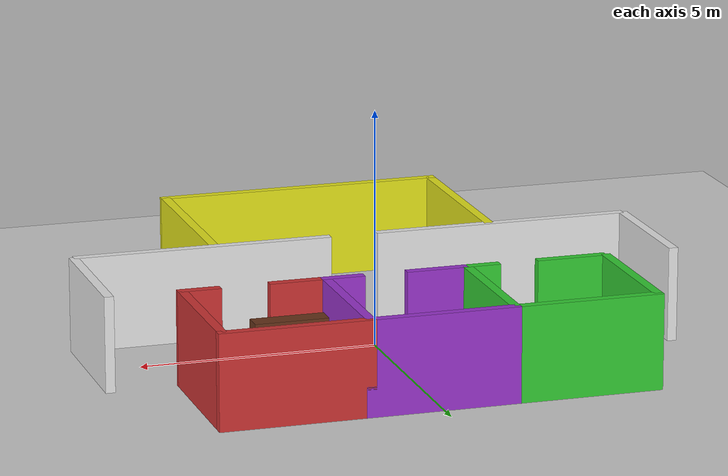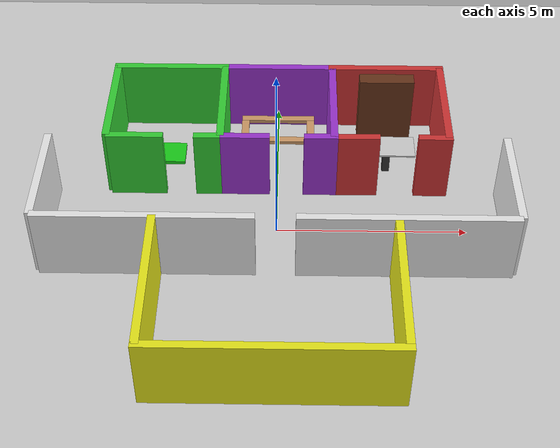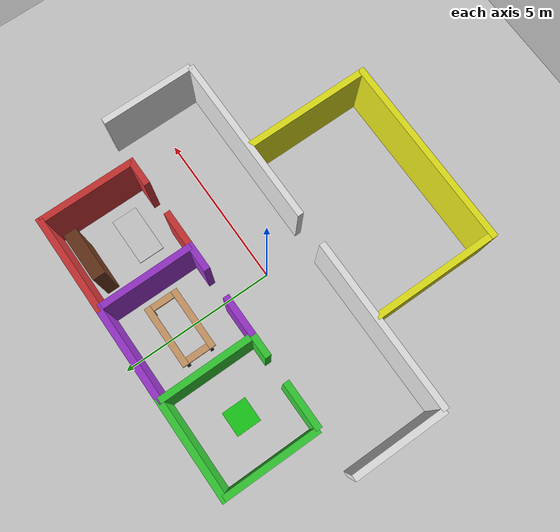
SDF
<sdf version="1.9">
 <world name="hospital_world_colored">
  <physics name="1ms" type="ignored">
   <max_step_size>0.001</max_step_size>
   <real_time_factor>1</real_time_factor>
   <real_time_update_rate>1000</real_time_update_rate>
  </physics>
  <plugin name="gz::sim::systems::Physics" filename="ignition-gazebo-physics-system"/>
  <plugin name="gz::sim::systems::UserCommands" filename="ignition-gazebo-user-commands-system"/>
  <plugin name="gz::sim::systems::SceneBroadcaster" filename="ignition-gazebo-scene-broadcaster-system"/>
  <plugin name="gz::sim::systems::Contact" filename="ignition-gazebo-contact-system"/>
  <gravity>0 0 -9.8</gravity>
  <magnetic_field>6e-06 2.3e-05 -4.2e-05</magnetic_field>
  <atmosphere type="adiabatic"/>
  <scene><ambient>0.4 0.4 0.4 1</ambient><background>0.7 0.7 0.7 1</background><shadows>true</shadows></scene>
  <light name="sun" type="directional">
   <pose>0 0 10 0 0 0</pose>
   <intensity>1</intensity>
   <direction>-0.5 0.1 -0.9</direction>
   <diffuse>0.8 0.8 0.8 1</diffuse>
   <specular>0.2 0.2 0.2 1</specular>
   <attenuation>
    <range>1000</range>
    <linear>0.01</linear>
    <constant>0.9</constant>
    <quadratic>0.001</quadratic>
   </attenuation>
  </light>
  <model name="ground_plane">
   <static>true</static>
   <link name="link">
    <collision name="collision">
     <geometry><plane><normal>0 0 1</normal><size>100 100</size></plane></geometry>
    </collision>
    <visual name="visual">
     <geometry><plane><normal>0 0 1</normal><size>100 100</size></plane></geometry>
     <material>
      <ambient>0.8 0.8 0.8 1</ambient>
      <diffuse>0.8 0.8 0.8 1</diffuse>
      <specular>0.8 0.8 0.8 1</specular>
     </material>
    </visual>
   </link>
  </model>
  <model name="building_structure">
   <static>true</static>
   <link name="walls">
    <visual name="corridor_wall_left">
     <pose>-6 0 1 0 0 1.5708</pose>
     <geometry><box><size>3 0.2 2</size></box></geometry>
     <material><ambient>0.9 0.9 0.9 1</ambient><diffuse>0.9 0.9 0.9 1</diffuse></material>
    </visual>
    <collision name="c_corridor_wall_left">
     <pose>-6 0 1 0 0 1.5708</pose>
     <geometry><box><size>3 0.2 2</size></box></geometry>
    </collision>
    <visual name="corridor_wall_right">
     <pose>6 0 1 0 0 1.5708</pose>
     <geometry><box><size>3 0.2 2</size></box></geometry>
     <material><ambient>0.9 0.9 0.9 1</ambient><diffuse>0.9 0.9 0.9 1</diffuse></material>
    </visual>
    <collision name="c_corridor_wall_right">
     <pose>6 0 1 0 0 1.5708</pose>
     <geometry><box><size>3 0.2 2</size></box></geometry>
    </collision>
    <visual name="corridor_wall_bottom_l">
     <pose>-3.25 -1.5 1 0 0 0</pose>
     <geometry><box><size>5.5 0.2 2</size></box></geometry>
     <material><ambient>0.9 0.9 0.9 1</ambient><diffuse>0.9 0.9 0.9 1</diffuse></material>
    </visual>
    <collision name="c_corridor_wall_bottom_l">
     <pose>-3.25 -1.5 1 0 0 0</pose>
     <geometry><box><size>5.5 0.2 2</size></box></geometry>
    </collision>
    <visual name="corridor_wall_bottom_r">
     <pose>3.25 -1.5 1 0 0 0</pose>
     <geometry><box><size>5.5 0.2 2</size></box></geometry>
     <material><ambient>0.9 0.9 0.9 1</ambient><diffuse>0.9 0.9 0.9 1</diffuse></material>
    </visual>
    <collision name="c_corridor_wall_bottom_r">
     <pose>3.25 -1.5 1 0 0 0</pose>
     <geometry><box><size>5.5 0.2 2</size></box></geometry>
    </collision>
    <visual name="r1_w1">
     <pose>-4.5 3 1 0 0 1.5708</pose>
     <geometry><box><size>3 0.2 2</size></box></geometry>
     <material><ambient>0.2 0.8 0.2 1</ambient><diffuse>0.2 0.8 0.2 1</diffuse></material>
    </visual>
    <visual name="r1_w2">
     <pose>-1.5 3 1 0 0 1.5708</pose>
     <geometry><box><size>3 0.2 2</size></box></geometry>
     <material><ambient>0.2 0.8 0.2 1</ambient><diffuse>0.2 0.8 0.2 1</diffuse></material>
    </visual>
    <visual name="r1_w3">
     <pose>-3 4.5 1 0 0 0</pose>
     <geometry><box><size>3.2 0.2 2</size></box></geometry>
     <material><ambient>0.2 0.8 0.2 1</ambient><diffuse>0.2 0.8 0.2 1</diffuse></material>
    </visual>
    <visual name="r1_w4_part1">
     <pose>-3.75 1.5 1 0 0 0</pose>
     <geometry><box><size>1.5 0.2 2</size></box></geometry>
     <material><ambient>0.2 0.8 0.2 1</ambient><diffuse>0.2 0.8 0.2 1</diffuse></material>
    </visual>
    <visual name="r1_w4_part2">
     <pose>-1.85 1.5 1 0 0 0</pose>
     <geometry><box><size>0.7 0.2 2</size></box></geometry>
     <material><ambient>0.2 0.8 0.2 1</ambient><diffuse>0.2 0.8 0.2 1</diffuse></material>
    </visual>
    <collision name="c_r1_w1">
     <pose>-4.5 3 1 0 0 1.5708</pose>
     <geometry><box><size>3 0.2 2</size></box></geometry>
    </collision>
    <collision name="c_r1_w2">
     <pose>-1.5 3 1 0 0 1.5708</pose>
     <geometry><box><size>3 0.2 2</size></box></geometry>
    </collision>
    <collision name="c_r1_w3">
     <pose>-3 4.5 1 0 0 0</pose>
     <geometry><box><size>3.2 0.2 2</size></box></geometry>
    </collision>
    <collision name="c_r1_w4_1">
     <pose>-3.75 1.5 1 0 0 0</pose>
     <geometry><box><size>1.5 0.2 2</size></box></geometry>
    </collision>
    <collision name="c_r1_w4_2">
     <pose>-1.85 1.5 1 0 0 0</pose>
     <geometry><box><size>0.7 0.2 2</size></box></geometry>
    </collision>
    <visual name="r2_w2">
     <pose>1.5 3 1 0 0 1.5708</pose>
     <geometry><box><size>3 0.2 2</size></box></geometry>
     <material><ambient>0.6 0.2 0.8 1</ambient><diffuse>0.6 0.2 0.8 1</diffuse></material>
    </visual>
    <visual name="r2_w3">
     <pose>0 4.5 1 0 0 0</pose>
     <geometry><box><size>3.2 0.2 2</size></box></geometry>
     <material><ambient>0.6 0.2 0.8 1</ambient><diffuse>0.6 0.2 0.8 1</diffuse></material>
    </visual>
    <visual name="r2_w4_part1">
     <pose>-0.85 1.5 1 0 0 0</pose>
     <geometry><box><size>1.3 0.2 2</size></box></geometry>
     <material><ambient>0.6 0.2 0.8 1</ambient><diffuse>0.6 0.2 0.8 1</diffuse></material>
    </visual>
    <visual name="r2_w4_part2">
     <pose>1.15 1.5 1 0 0 0</pose>
     <geometry><box><size>0.9 0.2 2</size></box></geometry>
     <material><ambient>0.6 0.2 0.8 1</ambient><diffuse>0.6 0.2 0.8 1</diffuse></material>
    </visual>
    <collision name="c_r2_w2">
     <pose>1.5 3 1 0 0 1.5708</pose>
     <geometry><box><size>3 0.2 2</size></box></geometry>
    </collision>
    <collision name="c_r2_w3">
     <pose>0 4.5 1 0 0 0</pose>
     <geometry><box><size>3.2 0.2 2</size></box></geometry>
    </collision>
    <collision name="c_r2_w4_1">
     <pose>-0.85 1.5 1 0 0 0</pose>
     <geometry><box><size>1.3 0.2 2</size></box></geometry>
    </collision>
    <collision name="c_r2_w4_2">
     <pose>1.15 1.5 1 0 0 0</pose>
     <geometry><box><size>0.9 0.2 2</size></box></geometry>
    </collision>
    <visual name="r3_w2">
     <pose>4.5 3 1 0 0 1.5708</pose>
     <geometry><box><size>3 0.2 2</size></box></geometry>
     <material><ambient>0.8 0.2 0.2 1</ambient><diffuse>0.8 0.2 0.2 1</diffuse></material>
    </visual>
    <visual name="r3_w3">
     <pose>3 4.5 1 0 0 0</pose>
     <geometry><box><size>3.2 0.2 2</size></box></geometry>
     <material><ambient>0.8 0.2 0.2 1</ambient><diffuse>0.8 0.2 0.2 1</diffuse></material>
    </visual>
    <visual name="r3_w4_part1">
     <pose>2.15 1.5 1 0 0 0</pose>
     <geometry><box><size>1.1 0.2 2</size></box></geometry>
     <material><ambient>0.8 0.2 0.2 1</ambient><diffuse>0.8 0.2 0.2 1</diffuse></material>
    </visual>
    <visual name="r3_w4_part2">
     <pose>4.15 1.5 1 0 0 0</pose>
     <geometry><box><size>0.9 0.2 2</size></box></geometry>
     <material><ambient>0.8 0.2 0.2 1</ambient><diffuse>0.8 0.2 0.2 1</diffuse></material>
    </visual>
    <collision name="c_r3_w2">
     <pose>4.5 3 1 0 0 1.5708</pose>
     <geometry><box><size>3 0.2 2</size></box></geometry>
    </collision>
    <collision name="c_r3_w3">
     <pose>3 4.5 1 0 0 0</pose>
     <geometry><box><size>3.2 0.2 2</size></box></geometry>
    </collision>
    <collision name="c_r3_w4_1">
     <pose>2.15 1.5 1 0 0 0</pose>
     <geometry><box><size>1.1 0.2 2</size></box></geometry>
    </collision>
    <collision name="c_r3_w4_2">
     <pose>4.15 1.5 1 0 0 0</pose>
     <geometry><box><size>0.9 0.2 2</size></box></geometry>
    </collision>
    <visual name="r4_w1">
     <pose>-3 -3.5 1 0 0 1.5708</pose>
     <geometry><box><size>4 0.2 2</size></box></geometry>
     <material><ambient>0.9 0.9 0.1 1</ambient><diffuse>0.9 0.9 0.1 1</diffuse></material>
    </visual>
    <collision name="c_r4_w1">
     <pose>-3 -3.5 1 0 0 1.5708</pose>
     <geometry><box><size>4 0.2 2</size></box></geometry>
    </collision>
    <visual name="r4_w2">
     <pose>3 -3.5 1 0 0 1.5708</pose>
     <geometry><box><size>4 0.2 2</size></box></geometry>
     <material><ambient>0.9 0.9 0.1 1</ambient><diffuse>0.9 0.9 0.1 1</diffuse></material>
    </visual>
    <collision name="c_r4_w2">
     <pose>3 -3.5 1 0 0 1.5708</pose>
     <geometry><box><size>4 0.2 2</size></box></geometry>
    </collision>
    <visual name="r4_w3">
     <pose>0 -5.5 1 0 0 0</pose>
     <geometry><box><size>6.2 0.2 2</size></box></geometry>
     <material><ambient>0.9 0.9 0.1 1</ambient><diffuse>0.9 0.9 0.1 1</diffuse></material>
    </visual>
    <collision name="c_r4_w3">
     <pose>0 -5.5 1 0 0 0</pose>
     <geometry><box><size>6.2 0.2 2</size></box></geometry>
    </collision>
   </link>
  </model>
  <model name="custom_hole_desk">
   <static>true</static>
   <pose>0 3 0 0 0 0</pose>
   <link name="desk_link">
    <visual name="leg1">
     <pose>0.9 0.4 0.45 0 0 0</pose>
     <geometry><box><size>0.1 0.1 0.9</size></box></geometry>
     <material><ambient>0.2 0.2 0.2 1</ambient><diffuse>0.2 0.2 0.2 1</diffuse></material>
    </visual>
    <visual name="leg2">
     <pose>-0.9 0.4 0.45 0 0 0</pose>
     <geometry><box><size>0.1 0.1 0.9</size></box></geometry>
     <material><ambient>0.2 0.2 0.2 1</ambient><diffuse>0.2 0.2 0.2 1</diffuse></material>
    </visual>
    <visual name="leg3">
     <pose>0.9 -0.4 0.45 0 0 0</pose>
     <geometry><box><size>0.1 0.1 0.9</size></box></geometry>
     <material><ambient>0.2 0.2 0.2 1</ambient><diffuse>0.2 0.2 0.2 1</diffuse></material>
    </visual>
    <visual name="leg4">
     <pose>-0.9 -0.4 0.45 0 0 0</pose>
     <geometry><box><size>0.1 0.1 0.9</size></box></geometry>
     <material><ambient>0.2 0.2 0.2 1</ambient><diffuse>0.2 0.2 0.2 1</diffuse></material>
    </visual>
    <visual name="top_front">
     <pose>0 0.45 0.95 0 0 0</pose>
     <geometry><box><size>2.0 0.2 0.1</size></box></geometry>
     <material><ambient>0.8 0.6 0.4 1</ambient><diffuse>0.8 0.6 0.4 1</diffuse></material>
    </visual>
    <visual name="top_back">
     <pose>0 -0.45 0.95 0 0 0</pose>
     <geometry><box><size>2.0 0.2 0.1</size></box></geometry>
     <material><ambient>0.8 0.6 0.4 1</ambient><diffuse>0.8 0.6 0.4 1</diffuse></material>
    </visual>
    <visual name="top_left">
     <pose>-0.9 0 0.95 0 0 0</pose>
     <geometry><box><size>0.2 0.7 0.1</size></box></geometry>
     <material><ambient>0.8 0.6 0.4 1</ambient><diffuse>0.8 0.6 0.4 1</diffuse></material>
    </visual>
    <visual name="top_right">
     <pose>0.9 0 0.95 0 0 0</pose>
     <geometry><box><size>0.2 0.7 0.1</size></box></geometry>
     <material><ambient>0.8 0.6 0.4 1</ambient><diffuse>0.8 0.6 0.4 1</diffuse></material>
    </visual>
    <collision name="c_leg1">
     <pose>0.9 0.4 0.45 0 0 0</pose>
     <geometry><box><size>0.1 0.1 0.9</size></box></geometry>
    </collision>
    <collision name="c_leg2">
     <pose>-0.9 0.4 0.45 0 0 0</pose>
     <geometry><box><size>0.1 0.1 0.9</size></box></geometry>
    </collision>
    <collision name="c_leg3">
     <pose>0.9 -0.4 0.45 0 0 0</pose>
     <geometry><box><size>0.1 0.1 0.9</size></box></geometry>
    </collision>
    <collision name="c_leg4">
     <pose>-0.9 -0.4 0.45 0 0 0</pose>
     <geometry><box><size>0.1 0.1 0.9</size></box></geometry>
    </collision>
    <collision name="c_top_front">
     <pose>0 0.45 0.95 0 0 0</pose>
     <geometry><box><size>2.0 0.2 0.1</size></box></geometry>
    </collision>
    <collision name="c_top_back">
     <pose>0 -0.45 0.95 0 0 0</pose>
     <geometry><box><size>2.0 0.2 0.1</size></box></geometry>
    </collision>
    <collision name="c_top_left">
     <pose>-0.9 0 0.95 0 0 0</pose>
     <geometry><box><size>0.2 0.7 0.1</size></box></geometry>
    </collision>
    <collision name="c_top_right">
     <pose>0.9 0 0.95 0 0 0</pose>
     <geometry><box><size>0.2 0.7 0.1</size></box></geometry>
    </collision>
   </link>
  </model>
  <model name="charging_dock">
   <static>true</static>
   <pose>-3 3 0.05 0 0 0</pose>
   <link name="base">
    <visual name="dock_visual">
     <geometry><box><size>0.8 0.8 0.1</size></box></geometry>
     <material><ambient>0.1 0.8 0.1 1</ambient><diffuse>0.1 0.8 0.1 1</diffuse></material>
    </visual>
    <collision name="dock_collision"><geometry><box><size>0.8 0.8 0.1</size></box></geometry></collision>
   </link>
  </model>
  <model name="bookshelf_simple">
   <static>true</static>
   <pose>3 4 0 0 0 0</pose>
   <link name="link">
    <visual name="visual">
     <pose>0 0 1 0 0 0</pose>
     <geometry><box><size>1.5 0.4 2</size></box></geometry>
     <material><ambient>0.4 0.2 0.1 1</ambient><diffuse>0.4 0.2 0.1 1</diffuse></material>
    </visual>
    <collision name="collision">
     <pose>0 0 1 0 0 0</pose>
     <geometry><box><size>1.5 0.4 2</size></box></geometry>
    </collision>
   </link>
  </model>
  <model name="normal_table">
   <static>true</static>
   <pose>3 2.5 0 0 0 0</pose>
   <link name="link">
    <visual name="top">
     <pose>0 0 0.8 0 0 0</pose>
     <geometry><box><size>1.5 0.8 0.05</size></box></geometry>
     <material><ambient>0.8 0.8 0.8 1</ambient><diffuse>0.8 0.8 0.8 1</diffuse></material>
    </visual>
    <visual name="leg">
     <pose>0 0 0.4 0 0 0</pose>
     <geometry><box><size>0.2 0.2 0.8</size></box></geometry>
     <material><ambient>0.2 0.2 0.2 1</ambient><diffuse>0.2 0.2 0.2 1</diffuse></material>
    </visual>
    <collision name="c_top">
     <pose>0 0 0.8 0 0 0</pose>
     <geometry><box><size>1.5 0.8 0.05</size></box></geometry>
    </collision>
    <collision name="c_leg">
     <pose>0 0 0.4 0 0 0</pose>
     <geometry><box><size>0.2 0.2 0.8</size></box></geometry>
    </collision>
   </link>
  </model>
 </world>
</sdf>
